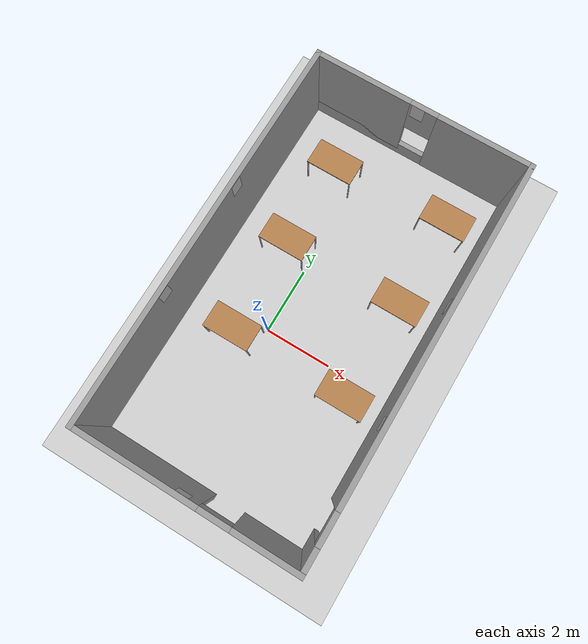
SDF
<sdf version="1.6">
 <world name="default">
  <light name="sun" type="directional">
   <cast_shadows>0</cast_shadows>
   <pose>0 0 10 0 -0 0</pose>
   <diffuse>0.8 0.8 0.8 1</diffuse>
   <specular>0.1 0.1 0.1 1</specular>
   <attenuation>
    <range>1000</range>
    <constant>0.9</constant>
    <linear>0.01</linear>
    <quadratic>0.001</quadratic>
   </attenuation>
   <direction>-0.5 0.5 -1</direction>
  </light>
  <include><uri>model://Tag0</uri><pose>-2.2749 2.5 2.5 0 0 1.57</pose></include>
  <include><uri>model://Tag1</uri><pose>-2.2749 -0.8 2.5 0 0 1.57</pose></include>
  <include><uri>model://Tag2</uri><pose>0.707 -4.525 2.5 0 0 3.14</pose></include>
  <include><size>0.297 0.001 0.42</size><uri>model://Tag3</uri><pose>3.85972 -0.8 2.5 0 0 1.57</pose></include>
  <include><uri>model://Tag4</uri><pose>3.85972 2.5 2.5 0 0 1.57</pose></include>
  <include><uri>model://Tag5</uri><pose>0.707 6.675 2.5 0 0 3.14</pose></include>
  <model name="ground_plane">
   <static>1</static>
   <link name="link">
    <collision name="collision">
     <geometry><plane><normal>0 0 1</normal><size>100 100</size></plane></geometry>
     <surface><friction><ode><mu>100</mu><mu2>50</mu2></ode></friction></surface>
    </collision>
    <visual name="visual">
     <cast_shadows>0</cast_shadows>
     <geometry><plane><normal>0 0 1</normal><size>100 100</size></plane></geometry>
     <material>
      <script><uri>file://media/materials/scripts/gazebo.material</uri><name>Gazebo/Grey</name></script>
     </material>
    </visual>
   </link>
  </model>
  <gravity>0 0 -9.8</gravity>
  <magnetic_field>6e-06 2.3e-05 -4.2e-05</magnetic_field>
  <atmosphere type="adiabatic"/>
  <physics name="default_physics" default="0" type="ode">
   <max_step_size>0.001</max_step_size>
   <real_time_factor>1</real_time_factor>
   <real_time_update_rate>1000</real_time_update_rate>
  </physics>
  <scene><ambient>0.4 0.4 0.4 1</ambient><background>0.7 0.7 0.7 1</background><shadows>1</shadows></scene>
  <spherical_coordinates>
   <surface_model>EARTH_WGS84</surface_model>
   <latitude_deg>0</latitude_deg>
   <longitude_deg>0</longitude_deg>
   <elevation>0</elevation>
   <heading_deg>0</heading_deg>
  </spherical_coordinates>
  <model name="table">
   <static>0</static>
   <link name="link">
    <collision name="surface">
     <pose>0 0 1 0 -0 0</pose>
     <geometry><box><size>1.5 0.8 0.03</size></box></geometry>
     <surface><friction><ode><mu>0.6</mu><mu2>0.6</mu2></ode></friction></surface>
    </collision>
    <visual name="visual1">
     <pose>0 0 1 0 -0 0</pose>
     <geometry><box><size>1.4 0.8 0.04</size></box></geometry>
     <material>
      <script><uri>file://media/materials/scripts/gazebo.material</uri><name>Gazebo/Wood</name></script>
     </material>
    </visual>
    <collision name="front_left_leg">
     <pose>0.68 0.38 0.5 0 -0 0</pose>
     <geometry><cylinder><radius>0.02</radius><length>1</length></cylinder></geometry>
    </collision>
    <visual name="front_left_leg">
     <pose>0.68 0.38 0.5 0 -0 0</pose>
     <geometry><cylinder><radius>0.02</radius><length>1</length></cylinder></geometry>
     <material>
      <script><uri>file://media/materials/scripts/gazebo.material</uri><name>Gazebo/Grey</name></script>
     </material>
    </visual>
    <collision name="front_right_leg">
     <pose>0.68 -0.38 0.5 0 -0 0</pose>
     <geometry><cylinder><radius>0.02</radius><length>1</length></cylinder></geometry>
    </collision>
    <visual name="front_right_leg">
     <pose>0.68 -0.38 0.5 0 -0 0</pose>
     <geometry><cylinder><radius>0.02</radius><length>1</length></cylinder></geometry>
     <material>
      <script><uri>file://media/materials/scripts/gazebo.material</uri><name>Gazebo/Grey</name></script>
     </material>
    </visual>
    <collision name="back_right_leg">
     <pose>-0.68 -0.38 0.5 0 -0 0</pose>
     <geometry><cylinder><radius>0.02</radius><length>1</length></cylinder></geometry>
    </collision>
    <visual name="back_right_leg">
     <pose>-0.68 -0.38 0.5 0 -0 0</pose>
     <geometry><cylinder><radius>0.02</radius><length>1</length></cylinder></geometry>
     <material>
      <script><uri>file://media/materials/scripts/gazebo.material</uri><name>Gazebo/Grey</name></script>
     </material>
    </visual>
    <collision name="back_left_leg">
     <pose>-0.68 0.38 0.5 0 -0 0</pose>
     <geometry><cylinder><radius>0.02</radius><length>1</length></cylinder></geometry>
    </collision>
    <visual name="back_left_leg">
     <pose>-0.68 0.38 0.5 0 -0 0</pose>
     <geometry><cylinder><radius>0.02</radius><length>1</length></cylinder></geometry>
     <material>
      <script><uri>file://media/materials/scripts/gazebo.material</uri><name>Gazebo/Grey</name></script>
     </material>
    </visual>
    <inertial>
     <inertia><ixx>1</ixx><ixy>0</ixy><ixz>0</ixz><iyy>1</iyy><iyz>0</iyz><izz>1</izz></inertia>
     <mass>1</mass>
    </inertial>
   </link>
   <pose>-0.744885 -0.499661 -9e-06 1e-06 -1e-06 0</pose>
  </model>
  <model name="table_0">
   <static>0</static>
   <link name="link">
    <collision name="surface">
     <pose>0 0 1 0 -0 0</pose>
     <geometry><box><size>1.5 0.8 0.03</size></box></geometry>
     <surface><friction><ode><mu>0.6</mu><mu2>0.6</mu2></ode></friction></surface>
    </collision>
    <visual name="visual1">
     <pose>0 0 1 0 -0 0</pose>
     <geometry><box><size>1.4 0.8 0.04</size></box></geometry>
     <material>
      <script><uri>file://media/materials/scripts/gazebo.material</uri><name>Gazebo/Wood</name></script>
     </material>
    </visual>
    <collision name="front_left_leg">
     <pose>0.68 0.38 0.5 0 -0 0</pose>
     <geometry><cylinder><radius>0.02</radius><length>1</length></cylinder></geometry>
    </collision>
    <visual name="front_left_leg">
     <pose>0.68 0.38 0.5 0 -0 0</pose>
     <geometry><cylinder><radius>0.02</radius><length>1</length></cylinder></geometry>
     <material>
      <script><uri>file://media/materials/scripts/gazebo.material</uri><name>Gazebo/Grey</name></script>
     </material>
    </visual>
    <collision name="front_right_leg">
     <pose>0.68 -0.38 0.5 0 -0 0</pose>
     <geometry><cylinder><radius>0.02</radius><length>1</length></cylinder></geometry>
    </collision>
    <visual name="front_right_leg">
     <pose>0.68 -0.38 0.5 0 -0 0</pose>
     <geometry><cylinder><radius>0.02</radius><length>1</length></cylinder></geometry>
     <material>
      <script><uri>file://media/materials/scripts/gazebo.material</uri><name>Gazebo/Grey</name></script>
     </material>
    </visual>
    <collision name="back_right_leg">
     <pose>-0.68 -0.38 0.5 0 -0 0</pose>
     <geometry><cylinder><radius>0.02</radius><length>1</length></cylinder></geometry>
    </collision>
    <visual name="back_right_leg">
     <pose>-0.68 -0.38 0.5 0 -0 0</pose>
     <geometry><cylinder><radius>0.02</radius><length>1</length></cylinder></geometry>
     <material>
      <script><uri>file://media/materials/scripts/gazebo.material</uri><name>Gazebo/Grey</name></script>
     </material>
    </visual>
    <collision name="back_left_leg">
     <pose>-0.68 0.38 0.5 0 -0 0</pose>
     <geometry><cylinder><radius>0.02</radius><length>1</length></cylinder></geometry>
    </collision>
    <visual name="back_left_leg">
     <pose>-0.68 0.38 0.5 0 -0 0</pose>
     <geometry><cylinder><radius>0.02</radius><length>1</length></cylinder></geometry>
     <material>
      <script><uri>file://media/materials/scripts/gazebo.material</uri><name>Gazebo/Grey</name></script>
     </material>
    </visual>
    <inertial>
     <inertia><ixx>1</ixx><ixy>0</ixy><ixz>0</ixz><iyy>1</iyy><iyz>0</iyz><izz>1</izz></inertia>
     <mass>1</mass>
    </inertial>
   </link>
   <pose>-0.770347 2.40684 -1e-06 -1e-06 1e-06 0</pose>
  </model>
  <model name="table_1">
   <static>0</static>
   <link name="link">
    <collision name="surface">
     <pose>0 0 1 0 -0 0</pose>
     <geometry><box><size>1.5 0.8 0.03</size></box></geometry>
     <surface><friction><ode><mu>0.6</mu><mu2>0.6</mu2></ode></friction></surface>
    </collision>
    <visual name="visual1">
     <pose>0 0 1 0 -0 0</pose>
     <geometry><box><size>1.4 0.8 0.04</size></box></geometry>
     <material>
      <script><uri>file://media/materials/scripts/gazebo.material</uri><name>Gazebo/Wood</name></script>
     </material>
    </visual>
    <collision name="front_left_leg">
     <pose>0.68 0.38 0.5 0 -0 0</pose>
     <geometry><cylinder><radius>0.02</radius><length>1</length></cylinder></geometry>
    </collision>
    <visual name="front_left_leg">
     <pose>0.68 0.38 0.5 0 -0 0</pose>
     <geometry><cylinder><radius>0.02</radius><length>1</length></cylinder></geometry>
     <material>
      <script><uri>file://media/materials/scripts/gazebo.material</uri><name>Gazebo/Grey</name></script>
     </material>
    </visual>
    <collision name="front_right_leg">
     <pose>0.68 -0.38 0.5 0 -0 0</pose>
     <geometry><cylinder><radius>0.02</radius><length>1</length></cylinder></geometry>
    </collision>
    <visual name="front_right_leg">
     <pose>0.68 -0.38 0.5 0 -0 0</pose>
     <geometry><cylinder><radius>0.02</radius><length>1</length></cylinder></geometry>
     <material>
      <script><uri>file://media/materials/scripts/gazebo.material</uri><name>Gazebo/Grey</name></script>
     </material>
    </visual>
    <collision name="back_right_leg">
     <pose>-0.68 -0.38 0.5 0 -0 0</pose>
     <geometry><cylinder><radius>0.02</radius><length>1</length></cylinder></geometry>
    </collision>
    <visual name="back_right_leg">
     <pose>-0.68 -0.38 0.5 0 -0 0</pose>
     <geometry><cylinder><radius>0.02</radius><length>1</length></cylinder></geometry>
     <material>
      <script><uri>file://media/materials/scripts/gazebo.material</uri><name>Gazebo/Grey</name></script>
     </material>
    </visual>
    <collision name="back_left_leg">
     <pose>-0.68 0.38 0.5 0 -0 0</pose>
     <geometry><cylinder><radius>0.02</radius><length>1</length></cylinder></geometry>
    </collision>
    <visual name="back_left_leg">
     <pose>-0.68 0.38 0.5 0 -0 0</pose>
     <geometry><cylinder><radius>0.02</radius><length>1</length></cylinder></geometry>
     <material>
      <script><uri>file://media/materials/scripts/gazebo.material</uri><name>Gazebo/Grey</name></script>
     </material>
    </visual>
    <inertial>
     <inertia><ixx>1</ixx><ixy>0</ixy><ixz>0</ixz><iyy>1</iyy><iyz>0</iyz><izz>1</izz></inertia>
     <mass>1</mass>
    </inertial>
   </link>
   <pose>-0.759059 5.02841 -9e-06 1e-06 -1e-06 0</pose>
  </model>
  <model name="table_2">
   <static>0</static>
   <link name="link">
    <collision name="surface">
     <pose>0 0 1 0 -0 0</pose>
     <geometry><box><size>1.5 0.8 0.03</size></box></geometry>
     <surface><friction><ode><mu>0.6</mu><mu2>0.6</mu2></ode></friction></surface>
    </collision>
    <visual name="visual1">
     <pose>0 0 1 0 -0 0</pose>
     <geometry><box><size>1.4 0.8 0.04</size></box></geometry>
     <material>
      <script><uri>file://media/materials/scripts/gazebo.material</uri><name>Gazebo/Wood</name></script>
     </material>
    </visual>
    <collision name="front_left_leg">
     <pose>0.68 0.38 0.5 0 -0 0</pose>
     <geometry><cylinder><radius>0.02</radius><length>1</length></cylinder></geometry>
    </collision>
    <visual name="front_left_leg">
     <pose>0.68 0.38 0.5 0 -0 0</pose>
     <geometry><cylinder><radius>0.02</radius><length>1</length></cylinder></geometry>
     <material>
      <script><uri>file://media/materials/scripts/gazebo.material</uri><name>Gazebo/Grey</name></script>
     </material>
    </visual>
    <collision name="front_right_leg">
     <pose>0.68 -0.38 0.5 0 -0 0</pose>
     <geometry><cylinder><radius>0.02</radius><length>1</length></cylinder></geometry>
    </collision>
    <visual name="front_right_leg">
     <pose>0.68 -0.38 0.5 0 -0 0</pose>
     <geometry><cylinder><radius>0.02</radius><length>1</length></cylinder></geometry>
     <material>
      <script><uri>file://media/materials/scripts/gazebo.material</uri><name>Gazebo/Grey</name></script>
     </material>
    </visual>
    <collision name="back_right_leg">
     <pose>-0.68 -0.38 0.5 0 -0 0</pose>
     <geometry><cylinder><radius>0.02</radius><length>1</length></cylinder></geometry>
    </collision>
    <visual name="back_right_leg">
     <pose>-0.68 -0.38 0.5 0 -0 0</pose>
     <geometry><cylinder><radius>0.02</radius><length>1</length></cylinder></geometry>
     <material>
      <script><uri>file://media/materials/scripts/gazebo.material</uri><name>Gazebo/Grey</name></script>
     </material>
    </visual>
    <collision name="back_left_leg">
     <pose>-0.68 0.38 0.5 0 -0 0</pose>
     <geometry><cylinder><radius>0.02</radius><length>1</length></cylinder></geometry>
    </collision>
    <visual name="back_left_leg">
     <pose>-0.68 0.38 0.5 0 -0 0</pose>
     <geometry><cylinder><radius>0.02</radius><length>1</length></cylinder></geometry>
     <material>
      <script><uri>file://media/materials/scripts/gazebo.material</uri><name>Gazebo/Grey</name></script>
     </material>
    </visual>
    <inertial>
     <inertia><ixx>1</ixx><ixy>0</ixy><ixz>0</ixz><iyy>1</iyy><iyz>0</iyz><izz>1</izz></inertia>
     <mass>1</mass>
    </inertial>
   </link>
   <pose>2.79592 -0.559684 -2e-06 0 -0 0</pose>
  </model>
  <model name="table_3">
   <static>0</static>
   <link name="link">
    <collision name="surface">
     <pose>0 0 1 0 -0 0</pose>
     <geometry><box><size>1.5 0.8 0.03</size></box></geometry>
     <surface><friction><ode><mu>0.6</mu><mu2>0.6</mu2></ode></friction></surface>
    </collision>
    <visual name="visual1">
     <pose>0 0 1 0 -0 0</pose>
     <geometry><box><size>1.4 0.8 0.04</size></box></geometry>
     <material>
      <script><uri>file://media/materials/scripts/gazebo.material</uri><name>Gazebo/Wood</name></script>
     </material>
    </visual>
    <collision name="front_left_leg">
     <pose>0.68 0.38 0.5 0 -0 0</pose>
     <geometry><cylinder><radius>0.02</radius><length>1</length></cylinder></geometry>
    </collision>
    <visual name="front_left_leg">
     <pose>0.68 0.38 0.5 0 -0 0</pose>
     <geometry><cylinder><radius>0.02</radius><length>1</length></cylinder></geometry>
     <material>
      <script><uri>file://media/materials/scripts/gazebo.material</uri><name>Gazebo/Grey</name></script>
     </material>
    </visual>
    <collision name="front_right_leg">
     <pose>0.68 -0.38 0.5 0 -0 0</pose>
     <geometry><cylinder><radius>0.02</radius><length>1</length></cylinder></geometry>
    </collision>
    <visual name="front_right_leg">
     <pose>0.68 -0.38 0.5 0 -0 0</pose>
     <geometry><cylinder><radius>0.02</radius><length>1</length></cylinder></geometry>
     <material>
      <script><uri>file://media/materials/scripts/gazebo.material</uri><name>Gazebo/Grey</name></script>
     </material>
    </visual>
    <collision name="back_right_leg">
     <pose>-0.68 -0.38 0.5 0 -0 0</pose>
     <geometry><cylinder><radius>0.02</radius><length>1</length></cylinder></geometry>
    </collision>
    <visual name="back_right_leg">
     <pose>-0.68 -0.38 0.5 0 -0 0</pose>
     <geometry><cylinder><radius>0.02</radius><length>1</length></cylinder></geometry>
     <material>
      <script><uri>file://media/materials/scripts/gazebo.material</uri><name>Gazebo/Grey</name></script>
     </material>
    </visual>
    <collision name="back_left_leg">
     <pose>-0.68 0.38 0.5 0 -0 0</pose>
     <geometry><cylinder><radius>0.02</radius><length>1</length></cylinder></geometry>
    </collision>
    <visual name="back_left_leg">
     <pose>-0.68 0.38 0.5 0 -0 0</pose>
     <geometry><cylinder><radius>0.02</radius><length>1</length></cylinder></geometry>
     <material>
      <script><uri>file://media/materials/scripts/gazebo.material</uri><name>Gazebo/Grey</name></script>
     </material>
    </visual>
    <inertial>
     <inertia><ixx>1</ixx><ixy>0</ixy><ixz>0</ixz><iyy>1</iyy><iyz>0</iyz><izz>1</izz></inertia>
     <mass>1</mass>
    </inertial>
   </link>
   <pose>2.81792 2.38731 -8e-06 0 -0 0</pose>
  </model>
  <model name="table_4">
   <static>0</static>
   <link name="link">
    <collision name="surface">
     <pose>0 0 1 0 -0 0</pose>
     <geometry><box><size>1.5 0.8 0.03</size></box></geometry>
     <surface><friction><ode><mu>0.6</mu><mu2>0.6</mu2></ode></friction></surface>
    </collision>
    <visual name="visual1">
     <pose>0 0 1 0 -0 0</pose>
     <geometry><box><size>1.4 0.8 0.04</size></box></geometry>
     <material>
      <script><uri>file://media/materials/scripts/gazebo.material</uri><name>Gazebo/Wood</name></script>
     </material>
    </visual>
    <collision name="front_left_leg">
     <pose>0.68 0.38 0.5 0 -0 0</pose>
     <geometry><cylinder><radius>0.02</radius><length>1</length></cylinder></geometry>
    </collision>
    <visual name="front_left_leg">
     <pose>0.68 0.38 0.5 0 -0 0</pose>
     <geometry><cylinder><radius>0.02</radius><length>1</length></cylinder></geometry>
     <material>
      <script><uri>file://media/materials/scripts/gazebo.material</uri><name>Gazebo/Grey</name></script>
     </material>
    </visual>
    <collision name="front_right_leg">
     <pose>0.68 -0.38 0.5 0 -0 0</pose>
     <geometry><cylinder><radius>0.02</radius><length>1</length></cylinder></geometry>
    </collision>
    <visual name="front_right_leg">
     <pose>0.68 -0.38 0.5 0 -0 0</pose>
     <geometry><cylinder><radius>0.02</radius><length>1</length></cylinder></geometry>
     <material>
      <script><uri>file://media/materials/scripts/gazebo.material</uri><name>Gazebo/Grey</name></script>
     </material>
    </visual>
    <collision name="back_right_leg">
     <pose>-0.68 -0.38 0.5 0 -0 0</pose>
     <geometry><cylinder><radius>0.02</radius><length>1</length></cylinder></geometry>
    </collision>
    <visual name="back_right_leg">
     <pose>-0.68 -0.38 0.5 0 -0 0</pose>
     <geometry><cylinder><radius>0.02</radius><length>1</length></cylinder></geometry>
     <material>
      <script><uri>file://media/materials/scripts/gazebo.material</uri><name>Gazebo/Grey</name></script>
     </material>
    </visual>
    <collision name="back_left_leg">
     <pose>-0.68 0.38 0.5 0 -0 0</pose>
     <geometry><cylinder><radius>0.02</radius><length>1</length></cylinder></geometry>
    </collision>
    <visual name="back_left_leg">
     <pose>-0.68 0.38 0.5 0 -0 0</pose>
     <geometry><cylinder><radius>0.02</radius><length>1</length></cylinder></geometry>
     <material>
      <script><uri>file://media/materials/scripts/gazebo.material</uri><name>Gazebo/Grey</name></script>
     </material>
    </visual>
    <inertial>
     <inertia><ixx>1</ixx><ixy>0</ixy><ixz>0</ixz><iyy>1</iyy><iyz>0</iyz><izz>1</izz></inertia>
     <mass>1</mass>
    </inertial>
   </link>
   <pose>2.79921 5.17155 -2e-06 0 -0 0</pose>
  </model>
  <model name="Entorno">
   <pose>0.80502 1.06818 0 0 -0 0</pose>
   <link name="Wall_12">
    <pose>0.000104 5.69243 0 0 -0 3.14159</pose>
    <visual name="Wall_12_Visual_0">
     <pose>-1.8478 0 1.25 0 -0 0</pose>
     <geometry><box><size>2.8044 0.15 3</size></box></geometry>
     <material>
      <script><uri>file://media/materials/scripts/gazebo.material</uri><name>Gazebo/Grey</name></script>
      <ambient>1 1 1 1</ambient>
     </material>
    </visual>
    <collision name="Wall_12_Collision_0">
     <geometry><box><size>2.8044 0.15 3</size></box></geometry>
     <pose>-1.8478 0 1.25 0 -0 0</pose>
    </collision>
    <visual name="Wall_12_Visual_1">
     <pose>1.4022 0 0.25 0 -0 0</pose>
     <geometry><box><size>3.6956 0.15 0.5</size></box></geometry>
     <material>
      <script><uri>file://media/materials/scripts/gazebo.material</uri><name>Gazebo/Grey</name></script>
      <ambient>1 1 1 1</ambient>
     </material>
    </visual>
    <collision name="Wall_12_Collision_1">
     <geometry><box><size>3.6956 0.15 0.5</size></box></geometry>
     <pose>1.4022 0 0.25 0 -0 0</pose>
    </collision>
    <visual name="Wall_12_Visual_2">
     <pose>1.8022 0 1.5 0 -0 0</pose>
     <geometry><box><size>2.8956 0.15 2.5</size></box></geometry>
     <material>
      <script><uri>file://media/materials/scripts/gazebo.material</uri><name>Gazebo/Grey</name></script>
      <ambient>1 1 1 1</ambient>
     </material>
    </visual>
    <collision name="Wall_12_Collision_2">
     <geometry><box><size>2.8956 0.15 2.5</size></box></geometry>
     <pose>1.8022 0 1.5 0 -0 0</pose>
    </collision>
    <visual name="Wall_12_Visual_3">
     <pose>-0.045596 0 2.15 0 -0 0</pose>
     <geometry><box><size>0.8 0.15 1.2</size></box></geometry>
     <material>
      <script><uri>file://media/materials/scripts/gazebo.material</uri><name>Gazebo/Grey</name></script>
      <ambient>1 1 1 1</ambient>
     </material>
    </visual>
    <collision name="Wall_12_Collision_3">
     <geometry><box><size>0.8 0.15 2.4</size></box></geometry>
     <pose>-0.045596 0 2.15 0 -0 0</pose>
    </collision>
   </link>
   <link name="Wall_14">
    <collision name="Wall_14_Collision">
     <geometry><box><size>11.5 0.15 3</size></box></geometry>
     <pose>0 0 1.25 0 -0 0</pose>
    </collision>
    <visual name="Wall_14_Visual">
     <pose>0 0 1.25 0 -0 0</pose>
     <geometry><box><size>11.5 0.15 3</size></box></geometry>
     <material>
      <script><uri>file://media/materials/scripts/gazebo.material</uri><name>Gazebo/Grey</name></script>
      <ambient>1 1 1 1</ambient>
     </material>
    </visual>
    <pose>-3.1749 0.01743 0 0 0 -1.5708</pose>
   </link>
   <link name="Wall_15">
    <pose>-0.015278 -5.6749 0 0 0 -0.005484</pose>
    <visual name="Wall_15_Visual_0">
     <pose>-1.42529 0 1.25 0 -0 0</pose>
     <geometry><box><size>3.61874 0.15 3</size></box></geometry>
     <material>
      <script><uri>file://media/materials/scripts/gazebo.material</uri><name>Gazebo/Grey</name></script>
      <ambient>1 1 1 1</ambient>
     </material>
    </visual>
    <collision name="Wall_15_Collision_0">
     <geometry><box><size>3.61874 0.15 3</size></box></geometry>
     <pose>-1.42529 0 1.25 0 -0 0</pose>
    </collision>
    <visual name="Wall_15_Visual_1">
     <pose>2.25937 0 1.25 0 -0 0</pose>
     <geometry><box><size>1.95059 0.15 3</size></box></geometry>
     <material>
      <script><uri>file://media/materials/scripts/gazebo.material</uri><name>Gazebo/Grey</name></script>
      <ambient>1 1 1 1</ambient>
     </material>
    </visual>
    <collision name="Wall_15_Collision_1">
     <geometry><box><size>1.95059 0.15 3</size></box></geometry>
     <pose>2.25937 0 1.25 0 -0 0</pose>
    </collision>
    <visual name="Wall_15_Visual_2">
     <pose>0.834077 0 2.5 0 -0 0</pose>
     <geometry><box><size>0.9 0.15 0.5</size></box></geometry>
     <material>
      <script><uri>file://media/materials/scripts/gazebo.material</uri><name>Gazebo/Grey</name></script>
      <ambient>1 1 1 1</ambient>
     </material>
    </visual>
    <collision name="Wall_15_Collision_2">
     <geometry><box><size>0.9 0.15 0.5</size></box></geometry>
     <pose>0.834077 0 2.5 0 -0 0</pose>
    </collision>
   </link>
   <link name="Wall_5">
    <pose>3.15972 0.000104 0 0 -0 1.56809</pose>
    <visual name="Wall_5_Visual_0">
     <pose>-5.38485 0 1.25 0 -0 0</pose>
     <geometry><box><size>0.764984 0.15 3</size></box></geometry>
     <material>
      <script><uri>file://media/materials/scripts/gazebo.material</uri><name>Gazebo/Grey</name></script>
      <ambient>1 1 1 1</ambient>
     </material>
    </visual>
    <collision name="Wall_5_Collision_0">
     <geometry><box><size>0.764984 0.15 3</size></box></geometry>
     <pose>-5.38485 0 1.25 0 -0 0</pose>
    </collision>
    <visual name="Wall_5_Visual_1">
     <pose>0.832492 0 1.25 0 -0 0</pose>
     <geometry><box><size>9.86971 0.15 3</size></box></geometry>
     <material>
      <script><uri>file://media/materials/scripts/gazebo.material</uri><name>Gazebo/Grey</name></script>
      <ambient>1 1 1 1</ambient>
     </material>
    </visual>
    <collision name="Wall_5_Collision_1">
     <geometry><box><size>9.86971 0.15 3</size></box></geometry>
     <pose>0.832492 0 1.25 0 -0 0</pose>
    </collision>
    <visual name="Wall_5_Visual_2">
     <pose>-4.55236 0 2.5 0 -0 0</pose>
     <geometry><box><size>0.9 0.15 0.5</size></box></geometry>
     <material>
      <script><uri>file://media/materials/scripts/gazebo.material</uri><name>Gazebo/Grey</name></script>
      <ambient>1 1 1 1</ambient>
     </material>
    </visual>
    <collision name="Wall_5_Collision_2">
     <geometry><box><size>0.9 0.15 0.5</size></box></geometry>
     <pose>-4.55236 0 2.5 0 -0 0</pose>
    </collision>
   </link>
   <static>1</static>
  </model>
 </world>
</sdf>

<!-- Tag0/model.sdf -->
<sdf version="1.6">
  <model name="Tag0">
    <static>true</static>
    <link name="link">
      <pose>0 0 0 0 0 0</pose>
      <collision name="collision">
        <geometry>
          <box>
            <size>0.3777 0.001 0.545985</size>
          </box>
        </geometry>
      </collision>
      <visual name="visual">
        <cast_shadows>false</cast_shadows>
        <geometry>
          <box>
            <size>0.3777 0.001 0.545985</size>
          </box>
        </geometry>
        <material>
          <script>
            <uri>model://Tag0/materials/scripts</uri>
	    <uri>model://Tag0/materials/textures</uri>
	    <name>vrc/Tag0</name>
          </script>
        </material>
      </visual>
    </link>
  </model>
</sdf>

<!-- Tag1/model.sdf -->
<sdf version="1.6">
  <model name="Tag1">
    <static>true</static>
    <link name="link">
      <pose>0 0 0 0 0 0</pose>
      <collision name="collision">
        <geometry>
          <box>
           <size>0.3777 0.001 0.545985</size>
          </box>
        </geometry>
      </collision>
      <visual name="visual">
        <cast_shadows>false</cast_shadows>
        <geometry>
          <box>
            <size>0.3777 0.001 0.545985</size>
          </box>
        </geometry>
        <material>
          <script>
            <uri>model://Tag1/materials/scripts</uri>
	    <uri>model://Tag1/materials/textures</uri>
	    <name>vrc/Tag1</name>
          </script>
        </material>
      </visual>
    </link>
  </model>
</sdf>

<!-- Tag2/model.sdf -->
<sdf version="1.6">
  <model name="Tag2">
    <static>true</static>
    <link name="link">
      <pose>0 0 0 0 0 0</pose>
      <collision name="collision">
        <geometry>
          <box>
            <size>0.3777 0.001 0.545985</size>
          </box>
        </geometry>
      </collision>
      <visual name="visual">
        <cast_shadows>false</cast_shadows>
        <geometry>
          <box>
            <size>0.3777 0.001 0.545985</size>
          </box>
        </geometry>
        <material>
          <script>
            <uri>model://Tag2/materials/scripts</uri>
	    <uri>model://Tag2/materials/textures</uri>
	    <name>vrc/Tag2</name>
          </script>
        </material>
      </visual>
    </link>
  </model>
</sdf>

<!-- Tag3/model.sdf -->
<sdf version="1.6">
  <model name="Tag3">
    <static>true</static>
    <link name="link">
      <pose>0 0 0 0 0 0</pose>
      <collision name="collision">
        <geometry>
          <box>
            <size>0.3777 0.001 0.545985</size>
          </box>
        </geometry>
      </collision>
      <visual name="visual">
        <cast_shadows>false</cast_shadows>
        <geometry>
          <box>
            <size>0.3777 0.001 0.545985</size>
          </box>
        </geometry>
        <material>
          <script>
            <uri>model://Tag3/materials/scripts</uri>
	    <uri>model://Tag3/materials/textures</uri>
	    <name>vrc/Tag3</name>
          </script>
        </material>
      </visual>
    </link>
  </model>
</sdf>

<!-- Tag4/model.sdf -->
<sdf version="1.6">
  <model name="Tag4">
    <static>true</static>
    <link name="link">
      <pose>0 0 0 0 0 0</pose>
      <collision name="collision">
        <geometry>
          <box>
            <size>0.3777 0.001 0.545985</size>
          </box>
        </geometry>
      </collision>
      <visual name="visual">
        <cast_shadows>false</cast_shadows>
        <geometry>
          <box>
            <size>0.3777 0.001 0.545985</size>
          </box>
        </geometry>
        <material>
          <script>
            <uri>model://Tag4/materials/scripts</uri>
	    <uri>model://Tag4/materials/textures</uri>
	    <name>vrc/Tag4</name>
          </script>
        </material>
      </visual>
    </link>
  </model>
</sdf>

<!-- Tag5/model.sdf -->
<sdf version="1.6">
  <model name="Tag5">
    <static>true</static>
    <link name="link">
      <pose>0 0 0 0 0 0</pose>
      <collision name="collision">
        <geometry>
          <box>
            <size>0.3777 0.001 0.545985</size>
          </box>
        </geometry>
      </collision>
      <visual name="visual">
        <cast_shadows>false</cast_shadows>
        <geometry>
          <box>
            <size>0.3777 0.001 0.545985</size>
          </box>
        </geometry>
        <material>
          <script>
            <uri>model://Tag5/materials/scripts</uri>
	    <uri>model://Tag5/materials/textures</uri>
	    <name>vrc/Tag5</name>
          </script>
        </material>
      </visual>
    </link>
  </model>
</sdf>
